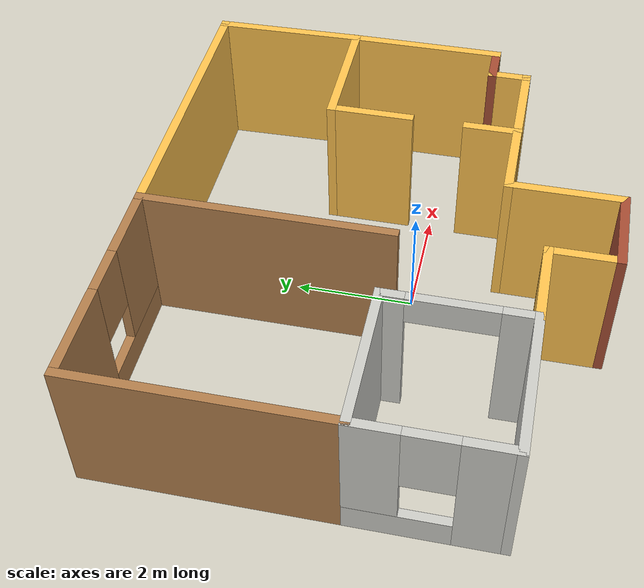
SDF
<?xml version='1.0'?>
<sdf version='1.6'>
  <model name='world'>
    <pose frame=''>-0.163345 0.542976 0 0 -0 0</pose>
    <link name='Wall_0'>
      <collision name='Wall_0_Collision'>
        <geometry>
          <box>
            <size>2.25 0.15 2.5</size>
          </box>
        </geometry>
        <pose frame=''>0 0 1.25 0 -0 0</pose>
      </collision>
      <visual name='Wall_0_Visual'>
        <pose frame=''>0 0 1.25 0 -0 0</pose>
        <geometry>
          <box>
            <size>2.25 0.15 2.5</size>
          </box>
        </geometry>
        <material>
          <script>
            <uri>file://media/materials/scripts/gazebo.material</uri>
            <name>Gazebo/Grey</name>
          </script>
          <ambient>1 0.764706 0.305882 1</ambient>
        </material>
        <meta>
          <layer>0</layer>
        </meta>
      </visual>
      <pose frame=''>3.19926 1.27426 0 0 -0 0</pose>
    </link>
    <link name='Wall_1'>
      <collision name='Wall_1_Collision'>
        <geometry>
          <box>
            <size>2.75 0.15 2.5</size>
          </box>
        </geometry>
        <pose frame=''>0 0 1.25 0 -0 0</pose>
      </collision>
      <visual name='Wall_1_Visual'>
        <pose frame=''>0 0 1.25 0 -0 0</pose>
        <geometry>
          <box>
            <size>2.75 0.15 2.5</size>
          </box>
        </geometry>
        <material>
          <script>
            <uri>file://media/materials/scripts/gazebo.material</uri>
            <name>Gazebo/Grey</name>
          </script>
          <ambient>1 0.764706 0.305882 1</ambient>
        </material>
        <meta>
          <layer>0</layer>
        </meta>
      </visual>
      <pose frame=''>4.24926 -0.025743 0 0 -0 -1.5708</pose>
    </link>
    <link name='Wall_12'>
      <pose frame=''>-4.25074 -1.50074 0 0 -0 1.5708</pose>
      <visual name='Wall_12_Visual_0'>
        <pose frame=''>-0.813457 0 1.25 0 -0 0</pose>
        <geometry>
          <box>
            <size>0.873086 0.15 2.5</size>
          </box>
        </geometry>
        <material>
          <script>
            <uri>file://media/materials/scripts/gazebo.material</uri>
            <name>Gazebo/CeilingTiled</name>
          </script>
          <ambient>1 1 1 1</ambient>
        </material>
        <meta>
          <layer>0</layer>
        </meta>
      </visual>
      <collision name='Wall_12_Collision_0'>
        <geometry>
          <box>
            <size>0.873086 0.15 2.5</size>
          </box>
        </geometry>
        <pose frame=''>-0.813457 0 1.25 0 -0 0</pose>
      </collision>
      <visual name='Wall_12_Visual_1'>
        <pose frame=''>0.436543 0 0.25 0 -0 0</pose>
        <geometry>
          <box>
            <size>1.62691 0.15 0.5</size>
          </box>
        </geometry>
        <material>
          <script>
            <uri>file://media/materials/scripts/gazebo.material</uri>
            <name>Gazebo/CeilingTiled</name>
          </script>
          <ambient>1 1 1 1</ambient>
        </material>
        <meta>
          <layer>0</layer>
        </meta>
      </visual>
      <collision name='Wall_12_Collision_1'>
        <geometry>
          <box>
            <size>1.62691 0.15 0.5</size>
          </box>
        </geometry>
        <pose frame=''>0.436543 0 0.25 0 -0 0</pose>
      </collision>
      <visual name='Wall_12_Visual_2'>
        <pose frame=''>0.836543 0 1.5 0 -0 0</pose>
        <geometry>
          <box>
            <size>0.826914 0.15 2</size>
          </box>
        </geometry>
        <material>
          <script>
            <uri>file://media/materials/scripts/gazebo.material</uri>
            <name>Gazebo/CeilingTiled</name>
          </script>
          <ambient>1 1 1 1</ambient>
        </material>
        <meta>
          <layer>0</layer>
        </meta>
      </visual>
      <collision name='Wall_12_Collision_2'>
        <geometry>
          <box>
            <size>0.826914 0.15 2</size>
          </box>
        </geometry>
        <pose frame=''>0.836543 0 1.5 0 -0 0</pose>
      </collision>
      <visual name='Wall_12_Visual_3'>
        <pose frame=''>0.023086 0 1.9 0 -0 0</pose>
        <geometry>
          <box>
            <size>0.8 0.15 1.2</size>
          </box>
        </geometry>
        <material>
          <script>
            <uri>file://media/materials/scripts/gazebo.material</uri>
            <name>Gazebo/CeilingTiled</name>
          </script>
          <ambient>1 1 1 1</ambient>
        </material>
        <meta>
          <layer>0</layer>
        </meta>
      </visual>
      <collision name='Wall_12_Collision_3'>
        <geometry>
          <box>
            <size>0.8 0.15 1.2</size>
          </box>
        </geometry>
        <pose frame=''>0.023086 0 1.9 0 -0 0</pose>
      </collision>
    </link>
    <link name='Wall_13'>
      <collision name='Wall_13_Collision'>
        <geometry>
          <box>
            <size>4.25 0.15 2.5</size>
          </box>
        </geometry>
        <pose frame=''>0 0 1.25 0 -0 0</pose>
      </collision>
      <visual name='Wall_13_Visual'>
        <pose frame=''>0 0 1.25 0 -0 0</pose>
        <geometry>
          <box>
            <size>4.25 0.15 2.5</size>
          </box>
        </geometry>
        <material>
          <script>
            <uri>file://media/materials/scripts/gazebo.material</uri>
            <name>Gazebo/Wood</name>
          </script>
          <ambient>1 1 1 1</ambient>
        </material>
        <meta>
          <layer>0</layer>
        </meta>
      </visual>
      <pose frame=''>-4.25074 1.72426 0 0 -0 1.5708</pose>
    </link>
    <link name='Wall_14'>
      <pose frame=''>-2.45074 3.77426 0 0 -0 0</pose>
      <visual name='Wall_14_Visual_0'>
        <pose frame=''>-1.05656 0 1.25 0 -0 0</pose>
        <geometry>
          <box>
            <size>1.63689 0.15 2.5</size>
          </box>
        </geometry>
        <material>
          <script>
            <uri>file://media/materials/scripts/gazebo.material</uri>
            <name>Gazebo/Wood</name>
          </script>
          <ambient>1 1 1 1</ambient>
        </material>
        <meta>
          <layer>0</layer>
        </meta>
      </visual>
      <collision name='Wall_14_Collision_0'>
        <geometry>
          <box>
            <size>1.63689 0.15 2.5</size>
          </box>
        </geometry>
        <pose frame=''>-1.05656 0 1.25 0 -0 0</pose>
      </collision>
      <visual name='Wall_14_Visual_1'>
        <pose frame=''>0.818443 0 0.25 0 -0 0</pose>
        <geometry>
          <box>
            <size>2.11311 0.15 0.5</size>
          </box>
        </geometry>
        <material>
          <script>
            <uri>file://media/materials/scripts/gazebo.material</uri>
            <name>Gazebo/Wood</name>
          </script>
          <ambient>1 1 1 1</ambient>
        </material>
        <meta>
          <layer>0</layer>
        </meta>
      </visual>
      <collision name='Wall_14_Collision_1'>
        <geometry>
          <box>
            <size>2.11311 0.15 0.5</size>
          </box>
        </geometry>
        <pose frame=''>0.818443 0 0.25 0 -0 0</pose>
      </collision>
      <visual name='Wall_14_Visual_2'>
        <pose frame=''>1.21844 0 1.5 0 -0 0</pose>
        <geometry>
          <box>
            <size>1.31311 0.15 2</size>
          </box>
        </geometry>
        <material>
          <script>
            <uri>file://media/materials/scripts/gazebo.material</uri>
            <name>Gazebo/Wood</name>
          </script>
          <ambient>1 1 1 1</ambient>
        </material>
        <meta>
          <layer>0</layer>
        </meta>
      </visual>
      <collision name='Wall_14_Collision_2'>
        <geometry>
          <box>
            <size>1.31311 0.15 2</size>
          </box>
        </geometry>
        <pose frame=''>1.21844 0 1.5 0 -0 0</pose>
      </collision>
      <visual name='Wall_14_Visual_3'>
        <pose frame=''>0.161886 0 1.9 0 -0 0</pose>
        <geometry>
          <box>
            <size>0.8 0.15 1.2</size>
          </box>
        </geometry>
        <material>
          <script>
            <uri>file://media/materials/scripts/gazebo.material</uri>
            <name>Gazebo/Wood</name>
          </script>
          <ambient>1 1 1 1</ambient>
        </material>
        <meta>
          <layer>0</layer>
        </meta>
      </visual>
      <collision name='Wall_14_Collision_3'>
        <geometry>
          <box>
            <size>0.8 0.15 1.2</size>
          </box>
        </geometry>
        <pose frame=''>0.161886 0 1.9 0 -0 0</pose>
      </collision>
    </link>
    <link name='Wall_17'>
      <collision name='Wall_17_Collision'>
        <geometry>
          <box>
            <size>2.5 0.15 2.5</size>
          </box>
        </geometry>
        <pose frame=''>0 0 1.25 0 -0 0</pose>
      </collision>
      <visual name='Wall_17_Visual'>
        <pose frame=''>0 0 1.25 0 -0 0</pose>
        <geometry>
          <box>
            <size>2.5 0.15 2.5</size>
          </box>
        </geometry>
        <material>
          <script>
            <uri>file://media/materials/scripts/gazebo.material</uri>
            <name>Gazebo/CeilingTiled</name>
          </script>
          <ambient>1 1 1 1</ambient>
        </material>
        <meta>
          <layer>0</layer>
        </meta>
      </visual>
      <pose frame=''>-3.07574 -0.325742 0 0 -0 0</pose>
    </link>
    <link name='Wall_19'>
      <pose frame=''>-1.90074 -1.50074 0 0 -0 -1.5708</pose>
      <visual name='Wall_19_Visual_0'>
        <pose frame=''>-1.01895 0 1.25 0 -0 0</pose>
        <geometry>
          <box>
            <size>0.462093 0.15 2.5</size>
          </box>
        </geometry>
        <material>
          <script>
            <uri>file://media/materials/scripts/gazebo.material</uri>
            <name>Gazebo/CeilingTiled</name>
          </script>
          <ambient>1 1 1 1</ambient>
        </material>
        <meta>
          <layer>0</layer>
        </meta>
      </visual>
      <collision name='Wall_19_Collision_0'>
        <geometry>
          <box>
            <size>0.462093 0.15 2.5</size>
          </box>
        </geometry>
        <pose frame=''>-1.01895 0 1.25 0 -0 0</pose>
      </collision>
      <visual name='Wall_19_Visual_1'>
        <pose frame=''>0.943398 0 1.25 0 -0 0</pose>
        <geometry>
          <box>
            <size>0.613205 0.15 2.5</size>
          </box>
        </geometry>
        <material>
          <script>
            <uri>file://media/materials/scripts/gazebo.material</uri>
            <name>Gazebo/CeilingTiled</name>
          </script>
          <ambient>1 1 1 1</ambient>
        </material>
        <meta>
          <layer>0</layer>
        </meta>
      </visual>
      <collision name='Wall_19_Collision_1'>
        <geometry>
          <box>
            <size>0.613205 0.15 2.5</size>
          </box>
        </geometry>
        <pose frame=''>0.943398 0 1.25 0 -0 0</pose>
      </collision>
      <visual name='Wall_19_Visual_2'>
        <pose frame=''>-0.075556 0 2.25 0 -0 0</pose>
        <geometry>
          <box>
            <size>1.4247 0.15 0.5</size>
          </box>
        </geometry>
        <material>
          <script>
            <uri>file://media/materials/scripts/gazebo.material</uri>
            <name>Gazebo/CeilingTiled</name>
          </script>
          <ambient>1 1 1 1</ambient>
        </material>
        <meta>
          <layer>0</layer>
        </meta>
      </visual>
      <collision name='Wall_19_Collision_2'>
        <geometry>
          <box>
            <size>1.4247 0.15 0.5</size>
          </box>
        </geometry>
        <pose frame=''>-0.075556 0 2.25 0 -0 0</pose>
      </collision>
    </link>
    <link name='Wall_2'>
      <collision name='Wall_2_Collision'>
        <geometry>
          <box>
            <size>0.75 0.15 2.5</size>
          </box>
        </geometry>
        <pose frame=''>0 0 1.25 0 -0 0</pose>
      </collision>
      <visual name='Wall_2_Visual'>
        <pose frame=''>0 0 1.25 0 -0 0</pose>
        <geometry>
          <box>
            <size>0.75 0.15 2.5</size>
          </box>
        </geometry>
        <material>
          <script>
            <uri>file://media/materials/scripts/gazebo.material</uri>
            <name>Gazebo/Bricks</name>
          </script>
          <ambient>1 1 1 1</ambient>
        </material>
        <meta>
          <layer>0</layer>
        </meta>
      </visual>
      <pose frame=''>3.94926 -1.32574 0 0 -0 3.14159</pose>
    </link>
    <link name='Wall_21'>
      <collision name='Wall_21_Collision'>
        <geometry>
          <box>
            <size>5 0.15 2.5</size>
          </box>
        </geometry>
        <pose frame=''>0 0 1.25 0 -0 0</pose>
      </collision>
      <visual name='Wall_21_Visual'>
        <pose frame=''>0 0 1.25 0 -0 0</pose>
        <geometry>
          <box>
            <size>5 0.15 2.5</size>
          </box>
        </geometry>
        <material>
          <script>
            <uri>file://media/materials/scripts/gazebo.material</uri>
            <name>Gazebo/Grey</name>
          </script>
          <ambient>1 0.764706 0.305882 1</ambient>
        </material>
        <meta>
          <layer>0</layer>
        </meta>
      </visual>
      <pose frame=''>1.77426 3.77426 0 0 -0 0</pose>
    </link>
    <link name='Wall_22'>
      <collision name='Wall_22_Collision'>
        <geometry>
          <box>
            <size>2.6505 0.15 2.5</size>
          </box>
        </geometry>
        <pose frame=''>0 0 1.25 0 -0 0</pose>
      </collision>
      <visual name='Wall_22_Visual'>
        <pose frame=''>0 0 1.25 0 -0 0</pose>
        <geometry>
          <box>
            <size>2.6505 0.15 2.5</size>
          </box>
        </geometry>
        <material>
          <script>
            <uri>file://media/materials/scripts/gazebo.material</uri>
            <name>Gazebo/Grey</name>
          </script>
          <ambient>1 0.764706 0.305882 1</ambient>
        </material>
        <meta>
          <layer>0</layer>
        </meta>
      </visual>
      <pose frame=''>4.22426 2.52426 0 0 -0 -1.5508</pose>
    </link>
    <link name='Wall_24'>
      <collision name='Wall_24_Collision'>
        <geometry>
          <box>
            <size>4.25 0.15 2.5</size>
          </box>
        </geometry>
        <pose frame=''>0 0 1.25 0 -0 0</pose>
      </collision>
      <visual name='Wall_24_Visual'>
        <pose frame=''>0 0 1.25 0 -0 0</pose>
        <geometry>
          <box>
            <size>4.25 0.15 2.5</size>
          </box>
        </geometry>
        <material>
          <script>
            <uri>file://media/materials/scripts/gazebo.material</uri>
            <name>Gazebo/Wood</name>
          </script>
          <ambient>1 1 1 1</ambient>
        </material>
        <meta>
          <layer>0</layer>
        </meta>
      </visual>
      <pose frame=''>-0.650742 1.72426 0 0 -0 -1.5708</pose>
    </link>
    <link name='Wall_27'>
      <collision name='Wall_27_Collision'>
        <geometry>
          <box>
            <size>1.5 0.15 2.5</size>
          </box>
        </geometry>
        <pose frame=''>0 0 1.25 0 -0 0</pose>
      </collision>
      <visual name='Wall_27_Visual'>
        <pose frame=''>0 0 1.25 0 -0 0</pose>
        <geometry>
          <box>
            <size>1.5 0.15 2.5</size>
          </box>
        </geometry>
        <material>
          <script>
            <uri>file://media/materials/scripts/gazebo.material</uri>
            <name>Gazebo/Grey</name>
          </script>
          <ambient>1 0.764706 0.305882 1</ambient>
        </material>
        <meta>
          <layer>0</layer>
        </meta>
      </visual>
      <pose frame=''>2.14926 0.599257 0 0 -0 -1.5708</pose>
    </link>
    <link name='Wall_29'>
      <collision name='Wall_29_Collision'>
        <geometry>
          <box>
            <size>1 0.15 2.5</size>
          </box>
        </geometry>
        <pose frame=''>0 0 1.25 0 -0 0</pose>
      </collision>
      <visual name='Wall_29_Visual'>
        <pose frame=''>0 0 1.25 0 -0 0</pose>
        <geometry>
          <box>
            <size>1 0.15 2.5</size>
          </box>
        </geometry>
        <material>
          <script>
            <uri>file://media/materials/scripts/gazebo.material</uri>
            <name>Gazebo/Grey</name>
          </script>
          <ambient>1 0.764706 0.305882 1</ambient>
        </material>
        <meta>
          <layer>0</layer>
        </meta>
      </visual>
      <pose frame=''>2.13613 -1.5074 0 0 -0 1.5708</pose>
    </link>
    <link name='Wall_3'>
      <collision name='Wall_3_Collision'>
        <geometry>
          <box>
            <size>0.75 0.15 2.5</size>
          </box>
        </geometry>
        <pose frame=''>0 0 1.25 0 -0 0</pose>
      </collision>
      <visual name='Wall_3_Visual'>
        <pose frame=''>0 0 1.25 0 -0 0</pose>
        <geometry>
          <box>
            <size>0.75 0.15 2.5</size>
          </box>
        </geometry>
        <material>
          <script>
            <uri>file://media/materials/scripts/gazebo.material</uri>
            <name>Gazebo/Grey</name>
          </script>
          <ambient>1 0.764706 0.305882 1</ambient>
        </material>
        <meta>
          <layer>0</layer>
        </meta>
      </visual>
      <pose frame=''>3.64926 -1.62574 0 0 -0 -1.5708</pose>
    </link>
    <link name='Wall_4'>
      <collision name='Wall_4_Collision'>
        <geometry>
          <box>
            <size>3 0.15 2.5</size>
          </box>
        </geometry>
        <pose frame=''>0 0 1.25 0 -0 0</pose>
      </collision>
      <visual name='Wall_4_Visual'>
        <pose frame=''>0 0 1.25 0 -0 0</pose>
        <geometry>
          <box>
            <size>3 0.15 2.5</size>
          </box>
        </geometry>
        <material>
          <script>
            <uri>file://media/materials/scripts/gazebo.material</uri>
            <name>Gazebo/Grey</name>
          </script>
          <ambient>1 0.764706 0.305882 1</ambient>
        </material>
        <meta>
          <layer>0</layer>
        </meta>
      </visual>
      <pose frame=''>2.22426 -1.92574 0 0 -0 3.14159</pose>
    </link>
    <link name='Wall_5'>
      <collision name='Wall_5_Collision'>
        <geometry>
          <box>
            <size>2 0.15 2.5</size>
          </box>
        </geometry>
        <pose frame=''>0 0 1.25 0 -0 0</pose>
      </collision>
      <visual name='Wall_5_Visual'>
        <pose frame=''>0 0 1.25 0 -0 0</pose>
        <geometry>
          <box>
            <size>2 0.15 2.5</size>
          </box>
        </geometry>
        <material>
          <script>
            <uri>file://media/materials/scripts/gazebo.material</uri>
            <name>Gazebo/Grey</name>
          </script>
          <ambient>1 0.764706 0.305882 1</ambient>
        </material>
        <meta>
          <layer>0</layer>
        </meta>
      </visual>
      <pose frame=''>0.799258 -2.85074 0 0 -0 -1.5708</pose>
    </link>
    <link name='Wall_6'>
      <collision name='Wall_6_Collision'>
        <geometry>
          <box>
            <size>1.5 0.15 2.5</size>
          </box>
        </geometry>
        <pose frame=''>0 0 1.25 0 -0 0</pose>
      </collision>
      <visual name='Wall_6_Visual'>
        <pose frame=''>0 0 1.25 0 -0 0</pose>
        <geometry>
          <box>
            <size>1.5 0.15 2.5</size>
          </box>
        </geometry>
        <material>
          <script>
            <uri>file://media/materials/scripts/gazebo.material</uri>
            <name>Gazebo/Bricks</name>
          </script>
          <ambient>1 1 1 1</ambient>
        </material>
        <meta>
          <layer>0</layer>
        </meta>
      </visual>
      <pose frame=''>0.124258 -3.77574 0 0 -0 3.14159</pose>
    </link>
    <link name='Wall_7'>
      <collision name='Wall_7_Collision'>
        <geometry>
          <box>
            <size>1.25 0.15 2.5</size>
          </box>
        </geometry>
        <pose frame=''>0 0 1.25 0 -0 0</pose>
      </collision>
      <visual name='Wall_7_Visual'>
        <pose frame=''>0 0 1.25 0 -0 0</pose>
        <geometry>
          <box>
            <size>1.25 0.15 2.5</size>
          </box>
        </geometry>
        <material>
          <script>
            <uri>file://media/materials/scripts/gazebo.material</uri>
            <name>Gazebo/Grey</name>
          </script>
          <ambient>1 0.764706 0.305882 1</ambient>
        </material>
        <meta>
          <layer>0</layer>
        </meta>
      </visual>
      <pose frame=''>-0.550742 -3.22574 0 0 -0 1.5708</pose>
    </link>
    <link name='Wall_8'>
      <collision name='Wall_8_Collision'>
        <geometry>
          <box>
            <size>1.5 0.15 2.5</size>
          </box>
        </geometry>
        <pose frame=''>0 0 1.25 0 -0 0</pose>
      </collision>
      <visual name='Wall_8_Visual'>
        <pose frame=''>0 0 1.25 0 -0 0</pose>
        <geometry>
          <box>
            <size>1.5 0.15 2.5</size>
          </box>
        </geometry>
        <material>
          <script>
            <uri>file://media/materials/scripts/gazebo.material</uri>
            <name>Gazebo/Grey</name>
          </script>
          <ambient>1 0.764706 0.305882 1</ambient>
        </material>
        <meta>
          <layer>0</layer>
        </meta>
      </visual>
      <pose frame=''>-1.22574 -2.67574 0 0 -0 3.14159</pose>
    </link>
    <link name='Wall_9'>
      <collision name='Wall_9_Collision'>
        <geometry>
          <box>
            <size>2.5 0.15 2.5</size>
          </box>
        </geometry>
        <pose frame=''>0 0 1.25 0 -0 0</pose>
      </collision>
      <visual name='Wall_9_Visual'>
        <pose frame=''>0 0 1.25 0 -0 0</pose>
        <geometry>
          <box>
            <size>2.5 0.15 2.5</size>
          </box>
        </geometry>
        <material>
          <script>
            <uri>file://media/materials/scripts/gazebo.material</uri>
            <name>Gazebo/CeilingTiled</name>
          </script>
          <ambient>1 1 1 1</ambient>
        </material>
        <meta>
          <layer>0</layer>
        </meta>
      </visual>
      <pose frame=''>-3.07574 -2.67574 0 0 -0 3.14159</pose>
    </link>
    <static>1</static>
  </model>
</sdf>
